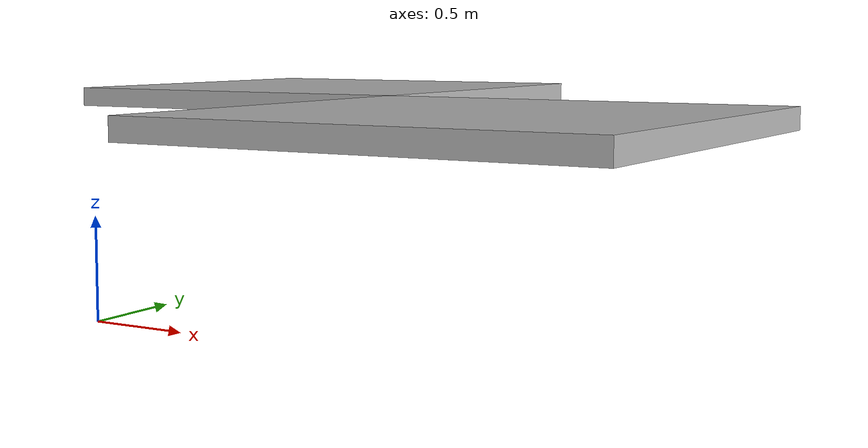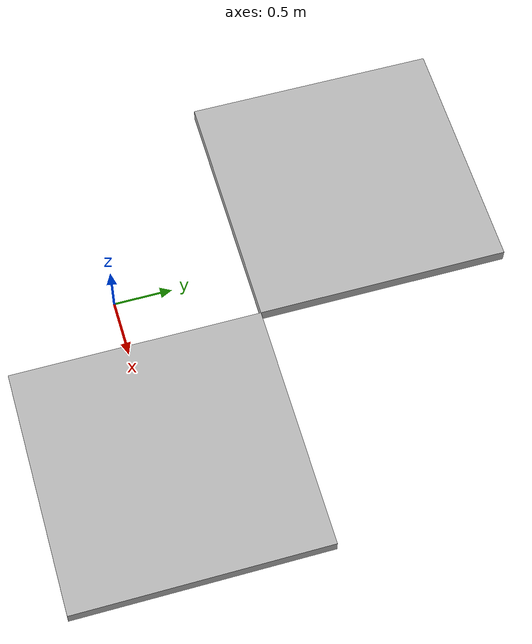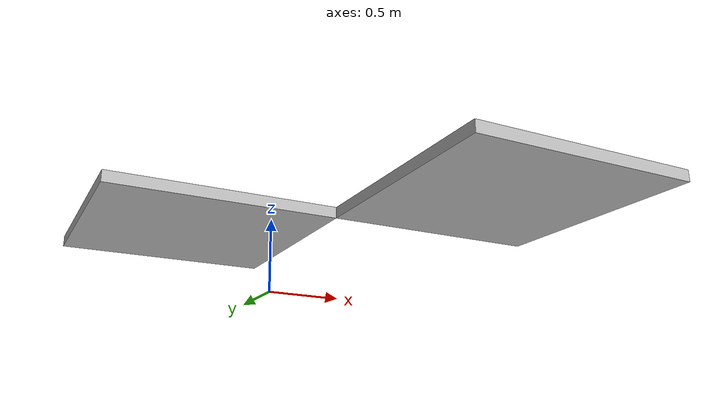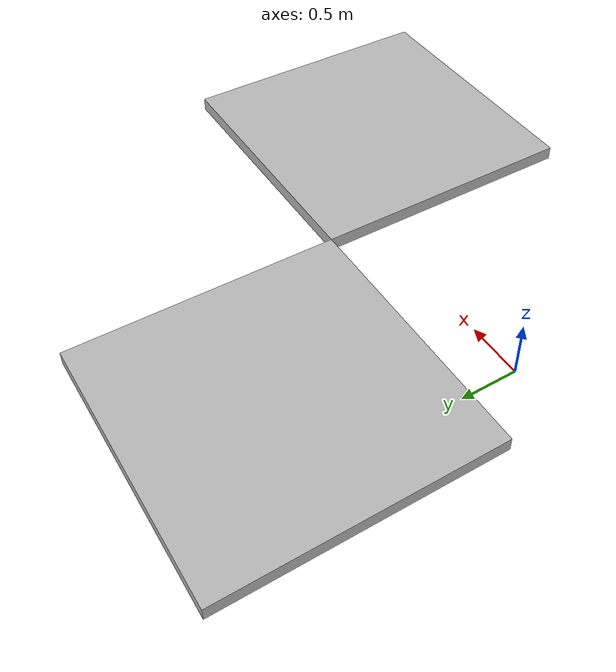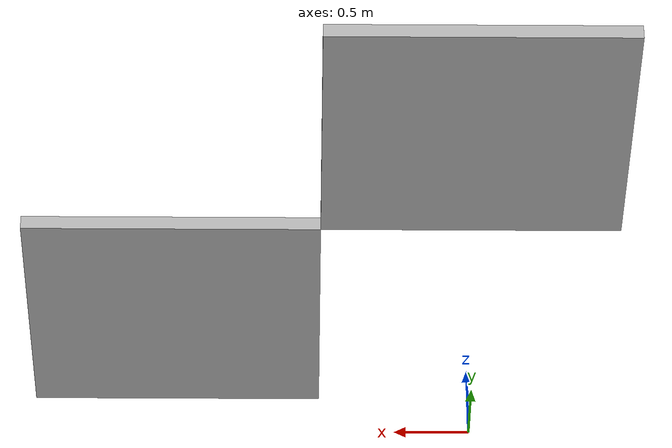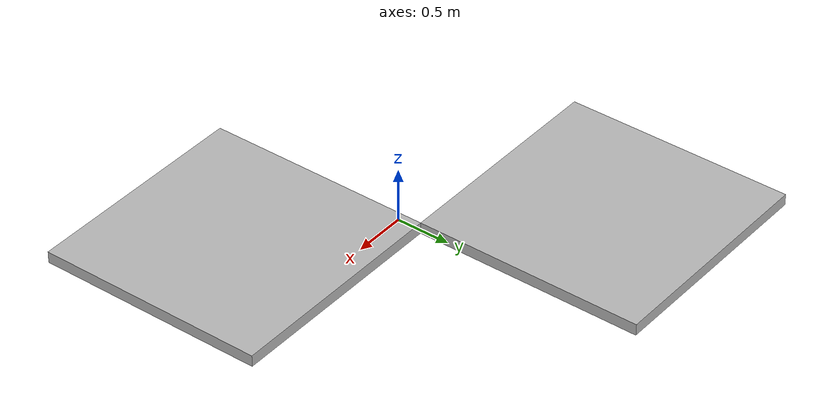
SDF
<?xml version="1.0"?>
<sdf version="1.4">
<model name="Bob">
    <link name="link-0">
        <inertial>
            <mass>1</mass>
            <inertia>
                <ixx>1</ixx>
                <ixy>0</ixy>
                <ixz>0</ixz>
                <iyy>1</iyy>
                <iyz>0</iyz>
                <izz>1</izz>
            </inertia>
            <pose>0 2 1 0 0 0</pose>
        </inertial>
        <visual>
            <geometry>
                <box>
                    <size>2 2 0.1</size>
                </box>
            </geometry>
            <pose>0 2 1 0 0 0</pose>
        </visual>
        <collision>
            <geometry>
                <box>
                    <size>2 2 0.1</size>
                </box>
            </geometry>
            <pose>0 2 1 0 0 0</pose>
        </collision>
    </link>

    <link name="link-1">
        <inertial>
            <mass>1</mass>
            <inertia>
                <ixx>1</ixx>
                <ixy>0</ixy>
                <ixz>0</ixz>
                <iyy>1</iyy>
                <iyz>0</iyz>
                <izz>1</izz>
            </inertia>
            <pose>2 0 1 0 0 0</pose>
        </inertial>
        <visual>
            <geometry>
                <box>
                    <size>2 2 0.1</size>
                </box>
            </geometry>
            <pose>2 0 1 0 0 0</pose>
        </visual>
        <collision>
            <geometry>
                <box>
                    <size>2 2 0.1</size>
                </box>
            </geometry>
            <pose>2 0 1 0 0 0</pose>
        </collision>
    </link>

    <joint name="fixed-01" type="fixed">
      <parent>link-0</parent>
      <child>link_1</child>
    </joint>
</model>
</sdf>
